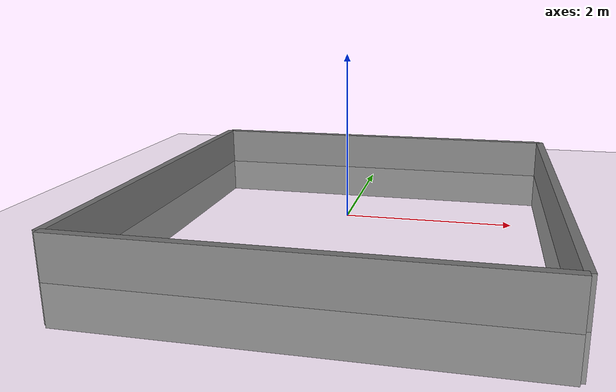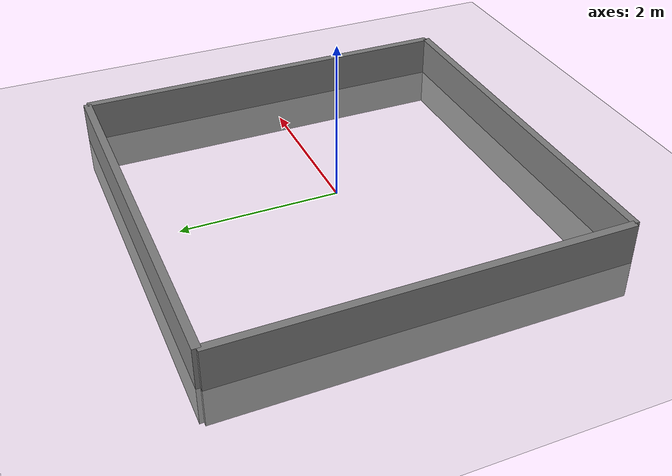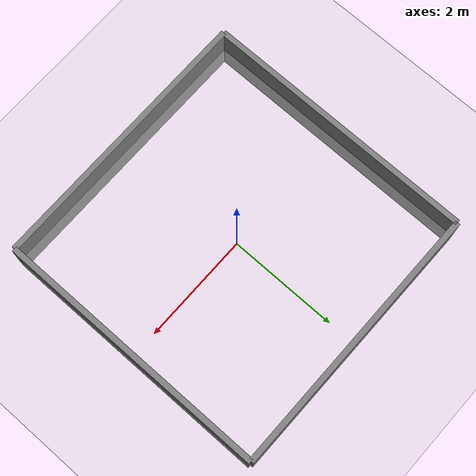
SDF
<?xml version="1.0"?>
<sdf version="1.8">
  <world name="sweepi_world">

    <!-- Physics Engine Configuration -->
    <physics type="ode">
      <real_time_update_rate>1000.0</real_time_update_rate>
      <max_step_size>0.001</max_step_size>
      <real_time_factor>1.0</real_time_factor>
      <ode>
        <solver>
          <type>quick</type>
          <iters>150</iters>
          <precon_iters>0</precon_iters>
          <sor>1.400000</sor>
          <use_dynamic_moi_rescaling>true</use_dynamic_moi_rescaling>
        </solver>
        <constraints>
          <cfm>0.00001</cfm>
          <erp>0.2</erp>
          <contact_max_correcting_vel>2000.0</contact_max_correcting_vel>
          <contact_surface_layer>0.01</contact_surface_layer>
        </constraints>
      </ode>
    </physics>

    <!-- Gravity and Magnetic Field -->
    <gravity>0 0 -9.81</gravity>
    <magnetic_field>5.5645e-06 2.28758e-05 -4.23884e-05</magnetic_field>

    <!-- Scene Settings -->
    <scene>
      <ambient>0.4 0.4 0.4 1</ambient>
      <background>0.7 0.7 0.7 1</background>
      <shadows>true</shadows>
    </scene>

    <!-- ==================== GAZEBO SYSTEM PLUGINS ==================== -->
    <!-- Physics System (REQUIRED) -->
    <plugin filename="gz-sim-physics-system" name="gz::sim::systems::Physics"/>

    <!-- User Commands System (REQUIRED for simulation control) -->
    <plugin filename="gz-sim-user-commands-system" name="gz::sim::systems::UserCommands"/>

    <!-- Scene Broadcaster System (REQUIRED for visualization) -->
    <plugin filename="gz-sim-scene-broadcaster-system" name="gz::sim::systems::SceneBroadcaster"/>

    <!-- Sensors System (REQUIRED for LiDAR and Camera) -->
    <plugin filename="gz-sim-sensors-system" name="gz::sim::systems::Sensors">
      <render_engine>ogre2</render_engine>
    </plugin>

    <!-- IMU System (for inertial measurement unit simulation) -->
    <plugin filename="gz-sim-imu-system" name="gz::sim::systems::Imu"/>

    <!-- ==================== GROUND PLANE ==================== -->
    <model name="ground_plane">
      <static>true</static>
      <link name="link">
        <collision name="collision">
          <geometry>
            <plane>
              <normal>0 0 1</normal>
              <size>100 100</size>
            </plane>
          </geometry>
        </collision>
        <visual name="visual">
          <geometry>
            <plane>
              <normal>0 0 1</normal>
              <size>100 100</size>
            </plane>
          </geometry>
          <material>
            <ambient>0.8 0.8 0.8 1</ambient>
            <diffuse>0.8 0.8 0.8 1</diffuse>
            <specular>0.8 0.8 0.8 1</specular>
          </material>
        </visual>
      </link>
    </model>

    <!-- ==================== WALLS ==================== -->
    <model name="wall_north">
      <static>true</static>
      <pose>0 2.5 0.01 0 0 0</pose>
      <link name="link">
        <collision name="collision">
          <geometry>
            <box>
              <size>5 0.1 0.02</size>
            </box>
          </geometry>
        </collision>
        <visual name="visual">
          <geometry>
            <box>
              <size>5 0.1 1.0</size>
            </box>
          </geometry>
          <material>
            <ambient>0.5 0.5 0.5 1</ambient>
            <diffuse>0.5 0.5 0.5 1</diffuse>
            <specular>0.5 0.5 0.5 1</specular>
          </material>
        </visual>
      </link>
    </model>

    <model name="wall_south">
      <static>true</static>
      <pose>0 -2.5 0.01 0 0 0</pose>
      <link name="link">
        <collision name="collision">
          <geometry>
            <box>
              <size>5 0.1 0.02</size>
            </box>
          </geometry>
        </collision>
        <visual name="visual">
          <geometry>
            <box>
              <size>5 0.1 1.0</size>
            </box>
          </geometry>
          <material>
            <ambient>0.5 0.5 0.5 1</ambient>
            <diffuse>0.5 0.5 0.5 1</diffuse>
            <specular>0.5 0.5 0.5 1</specular>
          </material>
        </visual>
      </link>
    </model>

    <model name="wall_east">
      <static>true</static>
      <pose>2.5 0 0.01 0 0 0</pose>
      <link name="link">
        <collision name="collision">
          <geometry>
            <box>
              <size>0.1 5 0.02</size>
            </box>
          </geometry>
        </collision>
        <visual name="visual">
          <geometry>
            <box>
              <size>0.1 5 1.0</size>
            </box>
          </geometry>
          <material>
            <ambient>0.5 0.5 0.5 1</ambient>
            <diffuse>0.5 0.5 0.5 1</diffuse>
            <specular>0.5 0.5 0.5 1</specular>
          </material>
        </visual>
      </link>
    </model>

    <model name="wall_west">
      <static>true</static>
      <pose>-2.5 0 0.01 0 0 0</pose>
      <link name="link">
        <collision name="collision">
          <geometry>
            <box>
              <size>0.1 5 0.02</size>
            </box>
          </geometry>
        </collision>
        <visual name="visual">
          <geometry>
            <box>
              <size>0.1 5 1.0</size>
            </box>
          </geometry>
          <material>
            <ambient>0.5 0.5 0.5 1</ambient>
            <diffuse>0.5 0.5 0.5 1</diffuse>
            <specular>0.5 0.5 0.5 1</specular>
          </material>
        </visual>
      </link>
    </model>

    <!-- ==================== LIGHTING ==================== -->
    <light name="sun" type="directional">
      <pose>0 0 10 0 0 0</pose>
      <cast_shadows>true</cast_shadows>
      <intensity>1</intensity>
      <direction>-0.5 0.1 -0.9</direction>
      <diffuse>0.8 0.8 0.8 1</diffuse>
      <specular>0.2 0.2 0.2 1</specular>
      <attenuation>
        <range>1000</range>
        <linear>0.01</linear>
        <constant>0.9</constant>
        <quadratic>0.001</quadratic>
      </attenuation>
    </light>

  </world>
</sdf>
